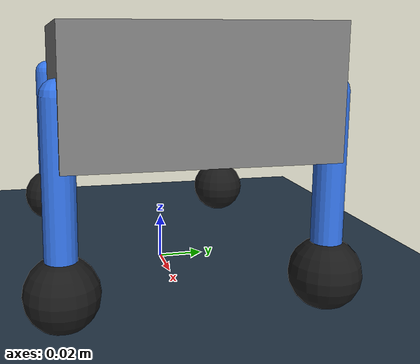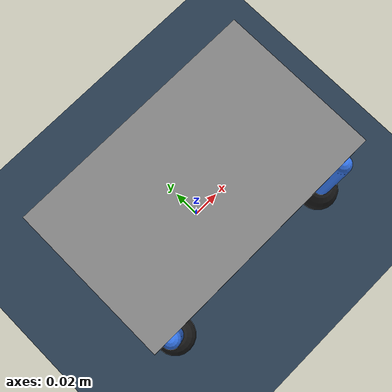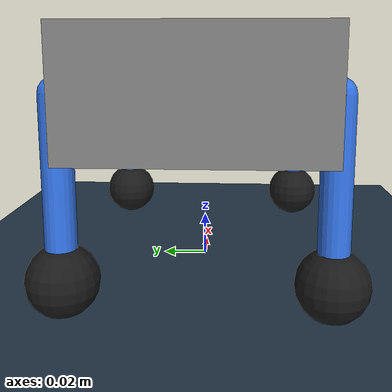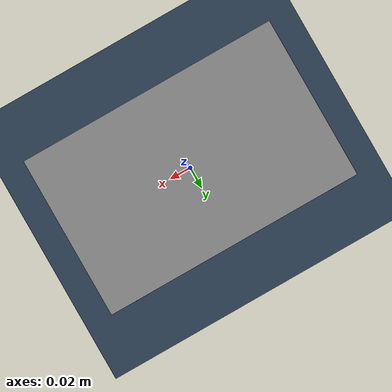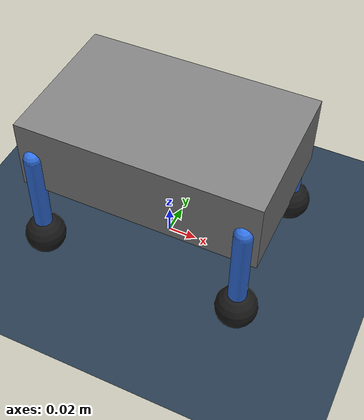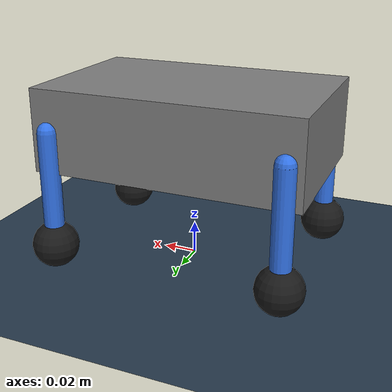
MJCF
<mujoco model="scene">
  <!-- Standalone viewer scene: robot + floor + light. mjlab uses lego_quad_abstract.xml directly. -->
  <include file="lego_quad_abstract.xml"/>
  <statistic center="0 0 0.05" extent="0.4"/>
  <visual><headlight diffuse="0.7 0.7 0.7" ambient="0.4 0.4 0.4"/><global azimuth="140" elevation="-20"/></visual>
  <asset>
    <texture type="skybox" builtin="gradient" rgb1="0.3 0.5 0.7" rgb2="0 0 0" width="512" height="512"/>
    <texture name="grid" type="2d" builtin="checker" rgb1="0.2 0.3 0.4" rgb2="0.1 0.15 0.2" width="512" height="512"/>
    <material name="grid" texture="grid" texrepeat="6 6" reflectance="0.1"/>
  </asset>
  <worldbody>
    <light pos="0 0 1.2" dir="0 0 -1" diffuse="0.8 0.8 0.8"/>
    <geom name="floor" type="plane" size="0 0 0.1" material="grid" friction="1.5 0.02 0.001"/>
  </worldbody>
</mujoco>

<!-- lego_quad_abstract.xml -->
<mujoco model="lego_quad_abstract">
  <compiler angle="radian" autolimits="true"/>
  <option timestep="0.004" integrator="implicitfast"/>
  <default>
    <default class="crank">
      <joint type="hinge" axis="0 1 0" damping="0.02" armature="0.002"/>
      <position kp="4" forcerange="-2 2"/>
      <default class="link"><geom type="capsule" size="0.006" rgba="0.2 0.45 0.9 1"/></default>
      <default class="foot"><geom type="sphere" size="0.014" friction="1.5 0.02 0.001" rgba="0.1 0.1 0.1 1"/></default>
    </default>
  </default>
  <worldbody>
    <body name="trunk" pos="0 0 0.085" childclass="crank">
      <freejoint name="root"/>
      <geom name="trunk" type="box" size="0.08 0.05 0.025" mass="0.22"/>
      <!-- each leg: one crank hinge; foot at radius 0.07 from the axis (a full turn = one step) -->
      <body name="FL" pos="0.07 0.05 0"><joint name="FLc"/><geom class="link" fromto="0 0 0 0 0 -0.07" mass="0.02"/><geom class="foot" pos="0 0 -0.07" mass="0.01"/></body>
      <body name="FR" pos="0.07 -0.05 0"><joint name="FRc"/><geom class="link" fromto="0 0 0 0 0 -0.07" mass="0.02"/><geom class="foot" pos="0 0 -0.07" mass="0.01"/></body>
      <body name="HL" pos="-0.07 0.05 0"><joint name="HLc"/><geom class="link" fromto="0 0 0 0 0 -0.07" mass="0.02"/><geom class="foot" pos="0 0 -0.07" mass="0.01"/></body>
      <body name="HR" pos="-0.07 -0.05 0"><joint name="HRc"/><geom class="link" fromto="0 0 0 0 0 -0.07" mass="0.02"/><geom class="foot" pos="0 0 -0.07" mass="0.01"/></body>
    </body>
  </worldbody>
  <actuator>
    <position class="crank" name="FLc" joint="FLc"/>
    <position class="crank" name="FRc" joint="FRc"/>
    <position class="crank" name="HLc" joint="HLc"/>
    <position class="crank" name="HRc" joint="HRc"/>
  </actuator>
</mujoco>
